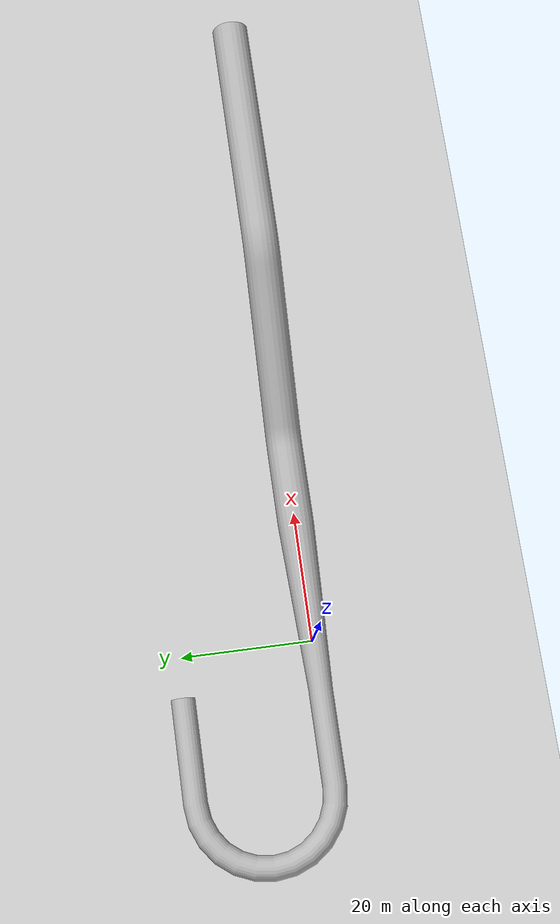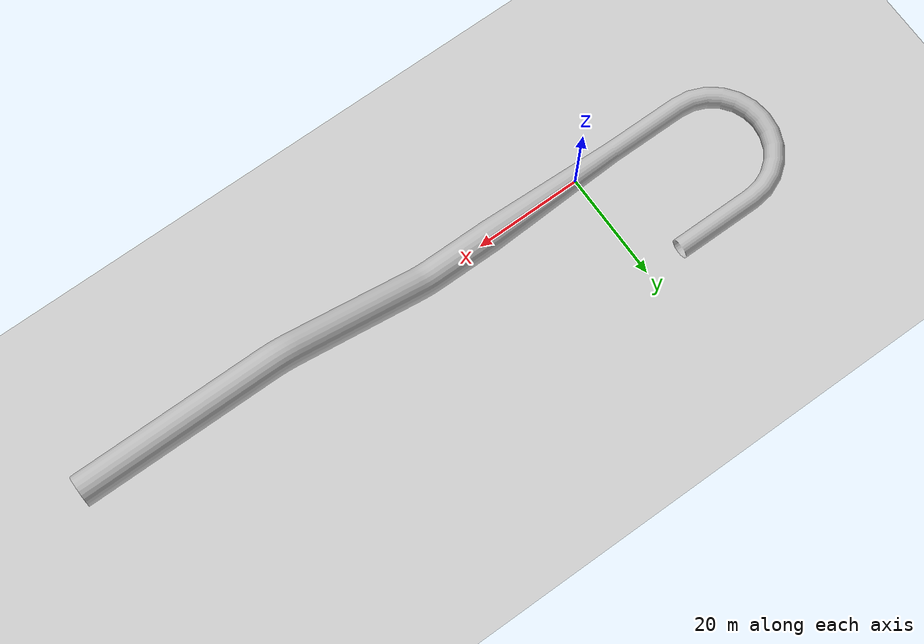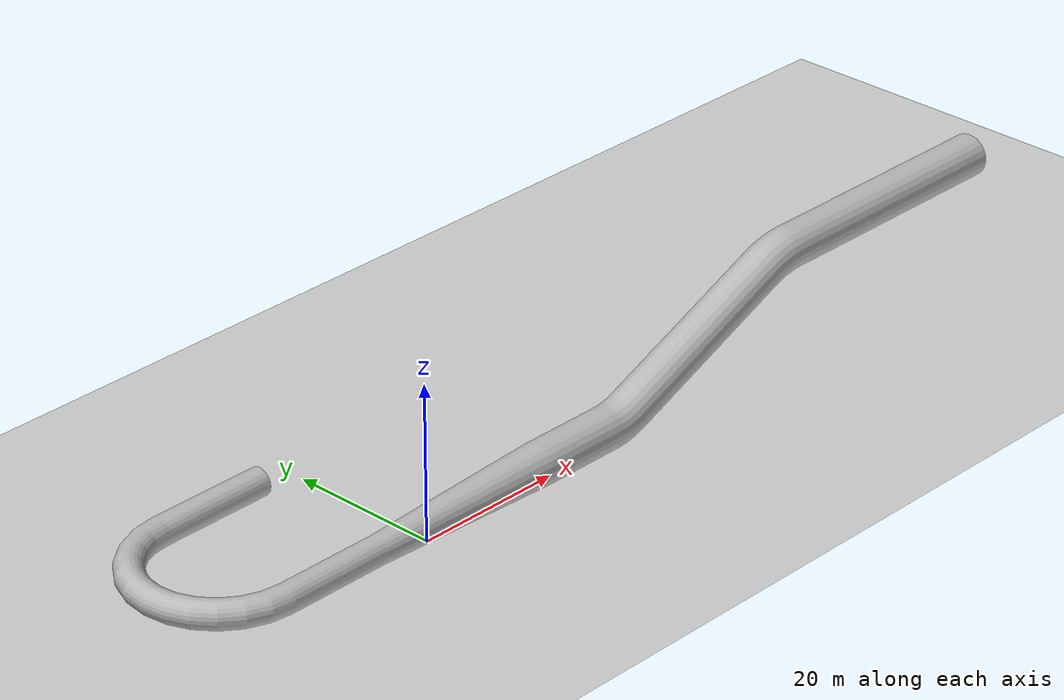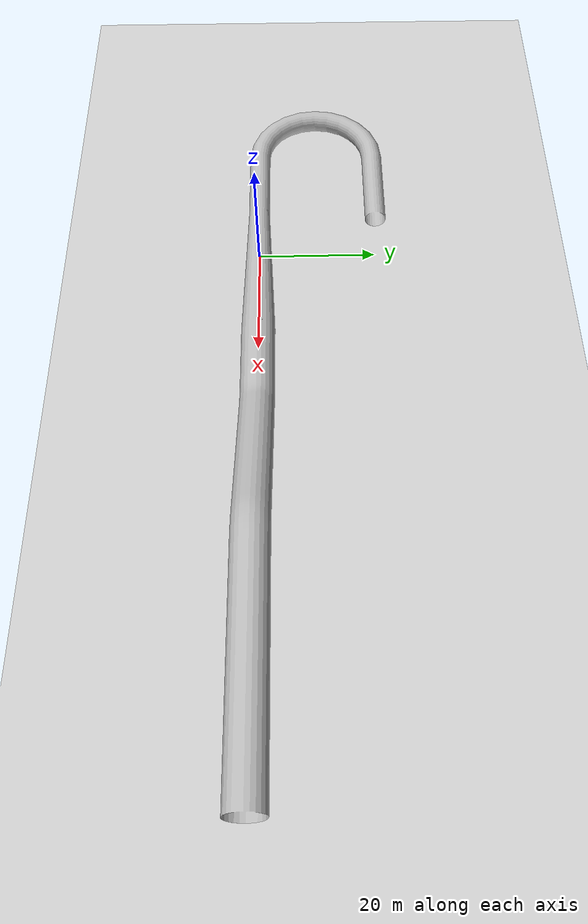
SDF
<?xml version="1.0"?>
<sdf version="1.4">
  <world name="Carters Penstock">
    <include>
      <uri>model://carters_penstock</uri>
      <static>true</static>
      <transparency>0.2</transparency>
      <pose> -30 0 2.25 0 0 0</pose>
    </include>
    <include>
      <uri>model://sun</uri>
    </include>
    <include>
      <uri>model://ground_plane</uri>
    </include>
    <physics type="ode">
      <ode>
        <solver>
          <type>quick</type>
          <iters>1000</iters>
          <sor>1.3</sor>
        </solver>
        <constraints>
          <cfm>0</cfm>
          <erp>0.2</erp>
          <contact_max_correcting_vel>100</contact_max_correcting_vel>
          <contact_surface_layer>0.001</contact_surface_layer>
        </constraints>
      </ode>
      <max_step_size>0.01</max_step_size>
      <real_time_factor>1</real_time_factor>
      <real_time_update_rate>100</real_time_update_rate>
      <gravity>0 0 -9.8</gravity>
    </physics>
  </world>
</sdf>

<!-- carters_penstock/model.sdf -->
<sdf version='1.5'>
  <model name="carters_penstock">
    <static>true</static>
    <link name='penstock'>
      <pose>0 0 0 0 0 0</pose>
	  <collision name='collision'>
        <geometry>
          <mesh>
            <uri>model://carters_penstock/meshes/CartersAccurate.dae</uri>
          </mesh>
        </geometry>
      </collision>
      <visual name='visual'>
        <geometry>
          <mesh>
            <uri>model://carters_penstock/meshes/CartersAccurate.dae</uri>
          </mesh>
        </geometry>
      </visual>
	</link>
  </model>
</sdf>
